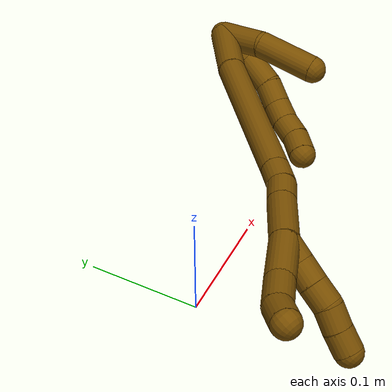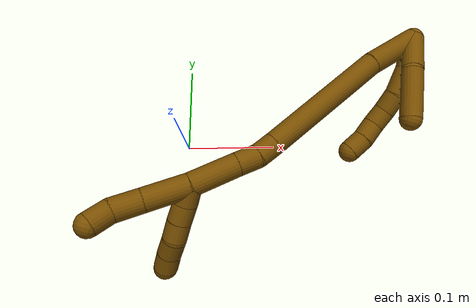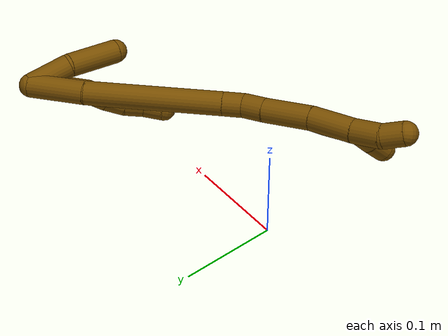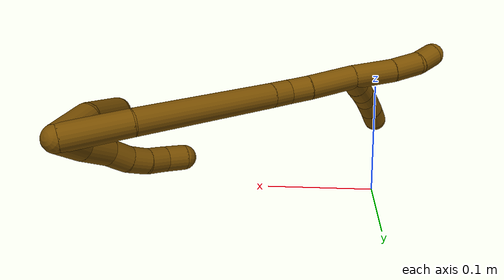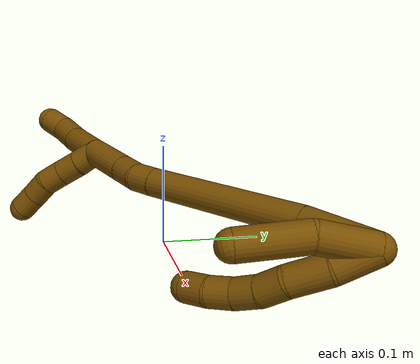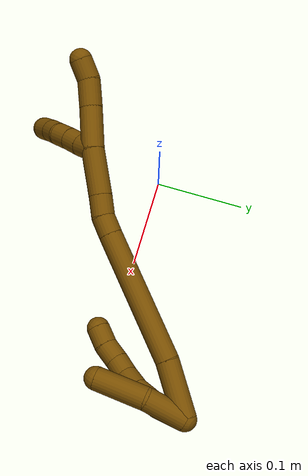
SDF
<sdf version="1.7">
 <world name="default">
  <model name="12">
   <static>0</static>
   <link name="12">
    <collision name="collision-cylinder-e_1_2_8">
     <pose>0.002296 0.001969 0.016513 -0.118653 0.137172 -0.00816</pose>
     <geometry><cylinder><radius>0.0125</radius><length>0.033576</length></cylinder></geometry>
     <surface>
      <friction><ode><mu>1.16</mu><mu2>1.16</mu2><slip1>0</slip1><slip2>0</slip2></ode></friction>
      <contact><ode><kp>1e+06</kp><kd>1</kd><max_vel>0</max_vel><min_depth>0.001</min_depth></ode></contact>
     </surface>
    </collision>
    <visual name="visual-cylinder-e_1_2_8">
     <pose>0.002296 0.001969 0.016513 -0.118653 0.137172 -0.00816</pose>
     <geometry><cylinder><radius>0.0125</radius><length>0.033576</length></cylinder></geometry>
     <material><ambient>0.466667 0.301961 0 1</ambient></material>
    </visual>
    <collision name="collision-cylinder-e_2_8_9">
     <pose>0.005509 0.002588 0.04879 0.085381 0.057939 0.002476</pose>
     <geometry><cylinder><radius>0.0125</radius><length>0.031695</length></cylinder></geometry>
     <surface>
      <friction><ode><mu>1.16</mu><mu2>1.16</mu2><slip1>0</slip1><slip2>0</slip2></ode></friction>
      <contact><ode><kp>1e+06</kp><kd>1</kd><max_vel>0</max_vel><min_depth>0.001</min_depth></ode></contact>
     </surface>
    </collision>
    <visual name="visual-cylinder-e_2_8_9">
     <pose>0.005509 0.002588 0.04879 0.085381 0.057939 0.002476</pose>
     <geometry><cylinder><radius>0.0125</radius><length>0.031695</length></cylinder></geometry>
     <material><ambient>0.466667 0.301961 0 1</ambient></material>
    </visual>
    <collision name="collision-cylinder-e_3_9_10">
     <pose>0.008583 -0.001901 0.074953 0.293266 0.195954 0.029032</pose>
     <geometry><cylinder><radius>0.0125</radius><length>0.022151</length></cylinder></geometry>
     <surface>
      <friction><ode><mu>1.16</mu><mu2>1.16</mu2><slip1>0</slip1><slip2>0</slip2></ode></friction>
      <contact><ode><kp>1e+06</kp><kd>1</kd><max_vel>0</max_vel><min_depth>0.001</min_depth></ode></contact>
     </surface>
    </collision>
    <visual name="visual-cylinder-e_3_9_10">
     <pose>0.008583 -0.001901 0.074953 0.293266 0.195954 0.029032</pose>
     <geometry><cylinder><radius>0.0125</radius><length>0.022151</length></cylinder></geometry>
     <material><ambient>0.466667 0.301961 0 1</ambient></material>
    </visual>
    <collision name="collision-cylinder-e_4_10_11">
     <pose>0.010586 -0.008693 0.09493 0.364173 -0.014917 -0.002747</pose>
     <geometry><cylinder><radius>0.0125</radius><length>0.020502</length></cylinder></geometry>
     <surface>
      <friction><ode><mu>1.16</mu><mu2>1.16</mu2><slip1>0</slip1><slip2>0</slip2></ode></friction>
      <contact><ode><kp>1e+06</kp><kd>1</kd><max_vel>0</max_vel><min_depth>0.001</min_depth></ode></contact>
     </surface>
    </collision>
    <visual name="visual-cylinder-e_4_10_11">
     <pose>0.010586 -0.008693 0.09493 0.364173 -0.014917 -0.002747</pose>
     <geometry><cylinder><radius>0.0125</radius><length>0.020502</length></cylinder></geometry>
     <material><ambient>0.466667 0.301961 0 1</ambient></material>
    </visual>
    <collision name="collision-cylinder-e_5_11_12">
     <pose>0.008287 -0.015387 0.1142 0.304307 -0.208211 -0.03204</pose>
     <geometry><cylinder><radius>0.0125</radius><length>0.020765</length></cylinder></geometry>
     <surface>
      <friction><ode><mu>1.16</mu><mu2>1.16</mu2><slip1>0</slip1><slip2>0</slip2></ode></friction>
      <contact><ode><kp>1e+06</kp><kd>1</kd><max_vel>0</max_vel><min_depth>0.001</min_depth></ode></contact>
     </surface>
    </collision>
    <visual name="visual-cylinder-e_5_11_12">
     <pose>0.008287 -0.015387 0.1142 0.304307 -0.208211 -0.03204</pose>
     <geometry><cylinder><radius>0.0125</radius><length>0.020765</length></cylinder></geometry>
     <material><ambient>0.466667 0.301961 0 1</ambient></material>
    </visual>
    <collision name="collision-cylinder-e_6_12_6">
     <pose>0.003811 -0.023677 0.132869 0.528802 -0.220444 -0.059908</pose>
     <geometry><cylinder><radius>0.0125</radius><length>0.021311</length></cylinder></geometry>
     <surface>
      <friction><ode><mu>1.16</mu><mu2>1.16</mu2><slip1>0</slip1><slip2>0</slip2></ode></friction>
      <contact><ode><kp>1e+06</kp><kd>1</kd><max_vel>0</max_vel><min_depth>0.001</min_depth></ode></contact>
     </surface>
    </collision>
    <visual name="visual-cylinder-e_6_12_6">
     <pose>0.003811 -0.023677 0.132869 0.528802 -0.220444 -0.059908</pose>
     <geometry><cylinder><radius>0.0125</radius><length>0.021311</length></cylinder></geometry>
     <material><ambient>0.466667 0.301961 0 1</ambient></material>
    </visual>
    <collision name="collision-cylinder-e_1_2_13">
     <pose>-0.010939 0.004058 0.019049 -0.209878 -0.511755 0.055095</pose>
     <geometry><cylinder><radius>0.0125</radius><length>0.044677</length></cylinder></geometry>
     <surface>
      <friction><ode><mu>1.16</mu><mu2>1.16</mu2><slip1>0</slip1><slip2>0</slip2></ode></friction>
      <contact><ode><kp>1e+06</kp><kd>1</kd><max_vel>0</max_vel><min_depth>0.001</min_depth></ode></contact>
     </surface>
    </collision>
    <visual name="visual-cylinder-e_1_2_13">
     <pose>-0.010939 0.004058 0.019049 -0.209878 -0.511755 0.055095</pose>
     <geometry><cylinder><radius>0.0125</radius><length>0.044677</length></cylinder></geometry>
     <material><ambient>0.466667 0.301961 0 1</ambient></material>
    </visual>
    <collision name="collision-cylinder-e_2_13_5">
     <pose>-0.027653 0.014678 0.064343 -0.245041 -0.210295 0.02599</pose>
     <geometry><cylinder><radius>0.0125</radius><length>0.055323</length></cylinder></geometry>
     <surface>
      <friction><ode><mu>1.16</mu><mu2>1.16</mu2><slip1>0</slip1><slip2>0</slip2></ode></friction>
      <contact><ode><kp>1e+06</kp><kd>1</kd><max_vel>0</max_vel><min_depth>0.001</min_depth></ode></contact>
     </surface>
    </collision>
    <visual name="visual-cylinder-e_2_13_5">
     <pose>-0.027653 0.014678 0.064343 -0.245041 -0.210295 0.02599</pose>
     <geometry><cylinder><radius>0.0125</radius><length>0.055323</length></cylinder></geometry>
     <material><ambient>0.466667 0.301961 0 1</ambient></material>
    </visual>
    <collision name="collision-cylinder-e_1_2_14">
     <pose>-0.011283 -0.017964 0.021912 0.686712 -0.378977 -0.136922</pose>
     <geometry><cylinder><radius>0.0125</radius><length>0.060996</length></cylinder></geometry>
     <surface>
      <friction><ode><mu>1.16</mu><mu2>1.16</mu2><slip1>0</slip1><slip2>0</slip2></ode></friction>
      <contact><ode><kp>1e+06</kp><kd>1</kd><max_vel>0</max_vel><min_depth>0.001</min_depth></ode></contact>
     </surface>
    </collision>
    <visual name="visual-cylinder-e_1_2_14">
     <pose>-0.011283 -0.017964 0.021912 0.686712 -0.378977 -0.136922</pose>
     <geometry><cylinder><radius>0.0125</radius><length>0.060996</length></cylinder></geometry>
     <material><ambient>0.466667 0.301961 0 1</ambient></material>
    </visual>
    <collision name="collision-cylinder-e_2_14_15">
     <pose>-0.047694 -0.070627 0.101562 0.541135 -0.357031 -0.100011</pose>
     <geometry><cylinder><radius>0.0125</radius><length>0.143794</length></cylinder></geometry>
     <surface>
      <friction><ode><mu>1.16</mu><mu2>1.16</mu2><slip1>0</slip1><slip2>0</slip2></ode></friction>
      <contact><ode><kp>1e+06</kp><kd>1</kd><max_vel>0</max_vel><min_depth>0.001</min_depth></ode></contact>
     </surface>
    </collision>
    <visual name="visual-cylinder-e_2_14_15">
     <pose>-0.047694 -0.070627 0.101562 0.541135 -0.357031 -0.100011</pose>
     <geometry><cylinder><radius>0.0125</radius><length>0.143794</length></cylinder></geometry>
     <material><ambient>0.466667 0.301961 0 1</ambient></material>
    </visual>
    <collision name="collision-cylinder-e_3_15_16">
     <pose>-0.076679 -0.110695 0.167613 0.573447 -0.371639 -0.110743</pose>
     <geometry><cylinder><radius>0.0125</radius><length>0.021243</length></cylinder></geometry>
     <surface>
      <friction><ode><mu>1.16</mu><mu2>1.16</mu2><slip1>0</slip1><slip2>0</slip2></ode></friction>
      <contact><ode><kp>1e+06</kp><kd>1</kd><max_vel>0</max_vel><min_depth>0.001</min_depth></ode></contact>
     </surface>
    </collision>
    <visual name="visual-cylinder-e_3_15_16">
     <pose>-0.076679 -0.110695 0.167613 0.573447 -0.371639 -0.110743</pose>
     <geometry><cylinder><radius>0.0125</radius><length>0.021243</length></cylinder></geometry>
     <material><ambient>0.466667 0.301961 0 1</ambient></material>
    </visual>
    <collision name="collision-cylinder-e_4_16_17">
     <pose>-0.084842 -0.124225 0.183003 0.85646 -0.379363 -0.174832</pose>
     <geometry><cylinder><radius>0.0125</radius><length>0.023257</length></cylinder></geometry>
     <surface>
      <friction><ode><mu>1.16</mu><mu2>1.16</mu2><slip1>0</slip1><slip2>0</slip2></ode></friction>
      <contact><ode><kp>1e+06</kp><kd>1</kd><max_vel>0</max_vel><min_depth>0.001</min_depth></ode></contact>
     </surface>
    </collision>
    <visual name="visual-cylinder-e_4_16_17">
     <pose>-0.084842 -0.124225 0.183003 0.85646 -0.379363 -0.174832</pose>
     <geometry><cylinder><radius>0.0125</radius><length>0.023257</length></cylinder></geometry>
     <material><ambient>0.466667 0.301961 0 1</ambient></material>
    </visual>
    <collision name="collision-cylinder-e_5_17_1">
     <pose>-0.099421 -0.149429 0.205793 0.825952 -0.417128 -0.184943</pose>
     <geometry><cylinder><radius>0.0125</radius><length>0.050711</length></cylinder></geometry>
     <surface>
      <friction><ode><mu>1.16</mu><mu2>1.16</mu2><slip1>0</slip1><slip2>0</slip2></ode></friction>
      <contact><ode><kp>1e+06</kp><kd>1</kd><max_vel>0</max_vel><min_depth>0.001</min_depth></ode></contact>
     </surface>
    </collision>
    <visual name="visual-cylinder-e_5_17_1">
     <pose>-0.099421 -0.149429 0.205793 0.825952 -0.417128 -0.184943</pose>
     <geometry><cylinder><radius>0.0125</radius><length>0.050711</length></cylinder></geometry>
     <material><ambient>0.466667 0.301961 0 1</ambient></material>
    </visual>
    <collision name="collision-cylinder-e_1_1_18">
     <pose>-0.117479 -0.183926 0.234397 0.934664 -0.344501 -0.175131</pose>
     <geometry><cylinder><radius>0.0125</radius><length>0.046106</length></cylinder></geometry>
     <surface>
      <friction><ode><mu>1.16</mu><mu2>1.16</mu2><slip1>0</slip1><slip2>0</slip2></ode></friction>
      <contact><ode><kp>1e+06</kp><kd>1</kd><max_vel>0</max_vel><min_depth>0.001</min_depth></ode></contact>
     </surface>
    </collision>
    <visual name="visual-cylinder-e_1_1_18">
     <pose>-0.117479 -0.183926 0.234397 0.934664 -0.344501 -0.175131</pose>
     <geometry><cylinder><radius>0.0125</radius><length>0.046106</length></cylinder></geometry>
     <material><ambient>0.466667 0.301961 0 1</ambient></material>
    </visual>
    <collision name="collision-cylinder-e_2_18_19">
     <pose>-0.131971 -0.212486 0.255463 0.936306 -0.452609 -0.231804</pose>
     <geometry><cylinder><radius>0.0125</radius><length>0.03067</length></cylinder></geometry>
     <surface>
      <friction><ode><mu>1.16</mu><mu2>1.16</mu2><slip1>0</slip1><slip2>0</slip2></ode></friction>
      <contact><ode><kp>1e+06</kp><kd>1</kd><max_vel>0</max_vel><min_depth>0.001</min_depth></ode></contact>
     </surface>
    </collision>
    <visual name="visual-cylinder-e_2_18_19">
     <pose>-0.131971 -0.212486 0.255463 0.936306 -0.452609 -0.231804</pose>
     <geometry><cylinder><radius>0.0125</radius><length>0.03067</length></cylinder></geometry>
     <material><ambient>0.466667 0.301961 0 1</ambient></material>
    </visual>
    <collision name="collision-cylinder-e_3_19_4">
     <pose>-0.145501 -0.228961 0.271348 0.608151 -0.628207 -0.203184</pose>
     <geometry><cylinder><radius>0.0125</radius><length>0.023225</length></cylinder></geometry>
     <surface>
      <friction><ode><mu>1.16</mu><mu2>1.16</mu2><slip1>0</slip1><slip2>0</slip2></ode></friction>
      <contact><ode><kp>1e+06</kp><kd>1</kd><max_vel>0</max_vel><min_depth>0.001</min_depth></ode></contact>
     </surface>
    </collision>
    <visual name="visual-cylinder-e_3_19_4">
     <pose>-0.145501 -0.228961 0.271348 0.608151 -0.628207 -0.203184</pose>
     <geometry><cylinder><radius>0.0125</radius><length>0.023225</length></cylinder></geometry>
     <material><ambient>0.466667 0.301961 0 1</ambient></material>
    </visual>
    <collision name="collision-cylinder-e_1_1_20">
     <pose>-0.10683 -0.166719 0.231085 0.02582 0.290356 0.003775</pose>
     <geometry><cylinder><radius>0.0125</radius><length>0.02</length></cylinder></geometry>
     <surface>
      <friction><ode><mu>1.16</mu><mu2>1.16</mu2><slip1>0</slip1><slip2>0</slip2></ode></friction>
      <contact><ode><kp>1e+06</kp><kd>1</kd><max_vel>0</max_vel><min_depth>0.001</min_depth></ode></contact>
     </surface>
    </collision>
    <visual name="visual-cylinder-e_1_1_20">
     <pose>-0.10683 -0.166719 0.231085 0.02582 0.290356 0.003775</pose>
     <geometry><cylinder><radius>0.0125</radius><length>0.02</length></cylinder></geometry>
     <material><ambient>0.466667 0.301961 0 1</ambient></material>
    </visual>
    <collision name="collision-cylinder-e_2_20_21">
     <pose>-0.101927 -0.167692 0.250426 0.07426 0.205472 0.00766</pose>
     <geometry><cylinder><radius>0.0125</radius><length>0.02</length></cylinder></geometry>
     <surface>
      <friction><ode><mu>1.16</mu><mu2>1.16</mu2><slip1>0</slip1><slip2>0</slip2></ode></friction>
      <contact><ode><kp>1e+06</kp><kd>1</kd><max_vel>0</max_vel><min_depth>0.001</min_depth></ode></contact>
     </surface>
    </collision>
    <visual name="visual-cylinder-e_2_20_21">
     <pose>-0.101927 -0.167692 0.250426 0.07426 0.205472 0.00766</pose>
     <geometry><cylinder><radius>0.0125</radius><length>0.02</length></cylinder></geometry>
     <material><ambient>0.466667 0.301961 0 1</ambient></material>
    </visual>
    <collision name="collision-cylinder-e_3_21_22">
     <pose>-0.097664 -0.168682 0.269934 0.027003 0.224207 0.00304</pose>
     <geometry><cylinder><radius>0.0125</radius><length>0.02</length></cylinder></geometry>
     <surface>
      <friction><ode><mu>1.16</mu><mu2>1.16</mu2><slip1>0</slip1><slip2>0</slip2></ode></friction>
      <contact><ode><kp>1e+06</kp><kd>1</kd><max_vel>0</max_vel><min_depth>0.001</min_depth></ode></contact>
     </surface>
    </collision>
    <visual name="visual-cylinder-e_3_21_22">
     <pose>-0.097664 -0.168682 0.269934 0.027003 0.224207 0.00304</pose>
     <geometry><cylinder><radius>0.0125</radius><length>0.02</length></cylinder></geometry>
     <material><ambient>0.466667 0.301961 0 1</ambient></material>
    </visual>
    <collision name="collision-cylinder-e_4_22_23">
     <pose>-0.09084 -0.170417 0.288437 0.166513 0.477998 0.04066</pose>
     <geometry><cylinder><radius>0.0125</radius><length>0.02</length></cylinder></geometry>
     <surface>
      <friction><ode><mu>1.16</mu><mu2>1.16</mu2><slip1>0</slip1><slip2>0</slip2></ode></friction>
      <contact><ode><kp>1e+06</kp><kd>1</kd><max_vel>0</max_vel><min_depth>0.001</min_depth></ode></contact>
     </surface>
    </collision>
    <visual name="visual-cylinder-e_4_22_23">
     <pose>-0.09084 -0.170417 0.288437 0.166513 0.477998 0.04066</pose>
     <geometry><cylinder><radius>0.0125</radius><length>0.02</length></cylinder></geometry>
     <material><ambient>0.466667 0.301961 0 1</ambient></material>
    </visual>
    <collision name="collision-cylinder-e_5_23_3">
     <pose>-0.081781 -0.17263 0.306113 0.082878 0.46219 0.019512</pose>
     <geometry><cylinder><radius>0.0125</radius><length>0.02</length></cylinder></geometry>
     <surface>
      <friction><ode><mu>1.16</mu><mu2>1.16</mu2><slip1>0</slip1><slip2>0</slip2></ode></friction>
      <contact><ode><kp>1e+06</kp><kd>1</kd><max_vel>0</max_vel><min_depth>0.001</min_depth></ode></contact>
     </surface>
    </collision>
    <visual name="visual-cylinder-e_5_23_3">
     <pose>-0.081781 -0.17263 0.306113 0.082878 0.46219 0.019512</pose>
     <geometry><cylinder><radius>0.0125</radius><length>0.02</length></cylinder></geometry>
     <material><ambient>0.466667 0.301961 0 1</ambient></material>
    </visual>
    <collision name="collision-sphere-3">
     <pose>-0.077322 -0.17337 0.315033 0 -0 0</pose>
     <geometry><sphere><radius>0.0125</radius></sphere></geometry>
     <surface>
      <friction><ode><mu>1.16</mu><mu2>1.16</mu2><slip1>0</slip1><slip2>0</slip2></ode></friction>
      <contact><ode><kp>1e+06</kp><kd>1</kd><max_vel>0</max_vel><min_depth>0.001</min_depth></ode></contact>
     </surface>
    </collision>
    <visual name="visual-sphere-3">
     <pose>-0.077322 -0.17337 0.315033 0 -0 0</pose>
     <geometry><sphere><radius>0.0125</radius></sphere></geometry>
     <material><ambient>0.466667 0.301961 0 1</ambient></material>
    </visual>
    <collision name="collision-sphere-23">
     <pose>-0.08624 -0.171889 0.297193 0 -0 0</pose>
     <geometry><sphere><radius>0.0125</radius></sphere></geometry>
     <surface>
      <friction><ode><mu>1.16</mu><mu2>1.16</mu2><slip1>0</slip1><slip2>0</slip2></ode></friction>
      <contact><ode><kp>1e+06</kp><kd>1</kd><max_vel>0</max_vel><min_depth>0.001</min_depth></ode></contact>
     </surface>
    </collision>
    <visual name="visual-sphere-23">
     <pose>-0.08624 -0.171889 0.297193 0 -0 0</pose>
     <geometry><sphere><radius>0.0125</radius></sphere></geometry>
     <material><ambient>0.466667 0.301961 0 1</ambient></material>
    </visual>
    <collision name="collision-sphere-22">
     <pose>-0.09544 -0.168945 0.279681 0 -0 0</pose>
     <geometry><sphere><radius>0.0125</radius></sphere></geometry>
     <surface>
      <friction><ode><mu>1.16</mu><mu2>1.16</mu2><slip1>0</slip1><slip2>0</slip2></ode></friction>
      <contact><ode><kp>1e+06</kp><kd>1</kd><max_vel>0</max_vel><min_depth>0.001</min_depth></ode></contact>
     </surface>
    </collision>
    <visual name="visual-sphere-22">
     <pose>-0.09544 -0.168945 0.279681 0 -0 0</pose>
     <geometry><sphere><radius>0.0125</radius></sphere></geometry>
     <material><ambient>0.466667 0.301961 0 1</ambient></material>
    </visual>
    <collision name="collision-sphere-21">
     <pose>-0.099887 -0.168419 0.260188 0 -0 0</pose>
     <geometry><sphere><radius>0.0125</radius></sphere></geometry>
     <surface>
      <friction><ode><mu>1.16</mu><mu2>1.16</mu2><slip1>0</slip1><slip2>0</slip2></ode></friction>
      <contact><ode><kp>1e+06</kp><kd>1</kd><max_vel>0</max_vel><min_depth>0.001</min_depth></ode></contact>
     </surface>
    </collision>
    <visual name="visual-sphere-21">
     <pose>-0.099887 -0.168419 0.260188 0 -0 0</pose>
     <geometry><sphere><radius>0.0125</radius></sphere></geometry>
     <material><ambient>0.466667 0.301961 0 1</ambient></material>
    </visual>
    <collision name="collision-sphere-20">
     <pose>-0.103967 -0.166966 0.240663 0 -0 0</pose>
     <geometry><sphere><radius>0.0125</radius></sphere></geometry>
     <surface>
      <friction><ode><mu>1.16</mu><mu2>1.16</mu2><slip1>0</slip1><slip2>0</slip2></ode></friction>
      <contact><ode><kp>1e+06</kp><kd>1</kd><max_vel>0</max_vel><min_depth>0.001</min_depth></ode></contact>
     </surface>
    </collision>
    <visual name="visual-sphere-20">
     <pose>-0.103967 -0.166966 0.240663 0 -0 0</pose>
     <geometry><sphere><radius>0.0125</radius></sphere></geometry>
     <material><ambient>0.466667 0.301961 0 1</ambient></material>
    </visual>
    <collision name="collision-sphere-4">
     <pose>-0.152326 -0.234329 0.279059 0 -0 0</pose>
     <geometry><sphere><radius>0.0125</radius></sphere></geometry>
     <surface>
      <friction><ode><mu>1.16</mu><mu2>1.16</mu2><slip1>0</slip1><slip2>0</slip2></ode></friction>
      <contact><ode><kp>1e+06</kp><kd>1</kd><max_vel>0</max_vel><min_depth>0.001</min_depth></ode></contact>
     </surface>
    </collision>
    <visual name="visual-sphere-4">
     <pose>-0.152326 -0.234329 0.279059 0 -0 0</pose>
     <geometry><sphere><radius>0.0125</radius></sphere></geometry>
     <material><ambient>0.466667 0.301961 0 1</ambient></material>
    </visual>
    <collision name="collision-sphere-12">
     <pose>0.006141 -0.018431 0.123892 0 -0 0</pose>
     <geometry><sphere><radius>0.0125</radius></sphere></geometry>
     <surface>
      <friction><ode><mu>1.16</mu><mu2>1.16</mu2><slip1>0</slip1><slip2>0</slip2></ode></friction>
      <contact><ode><kp>1e+06</kp><kd>1</kd><max_vel>0</max_vel><min_depth>0.001</min_depth></ode></contact>
     </surface>
    </collision>
    <visual name="visual-sphere-12">
     <pose>0.006141 -0.018431 0.123892 0 -0 0</pose>
     <geometry><sphere><radius>0.0125</radius></sphere></geometry>
     <material><ambient>0.466667 0.301961 0 1</ambient></material>
    </visual>
    <collision name="collision-sphere-11">
     <pose>0.010434 -0.012343 0.104508 0 -0 0</pose>
     <geometry><sphere><radius>0.0125</radius></sphere></geometry>
     <surface>
      <friction><ode><mu>1.16</mu><mu2>1.16</mu2><slip1>0</slip1><slip2>0</slip2></ode></friction>
      <contact><ode><kp>1e+06</kp><kd>1</kd><max_vel>0</max_vel><min_depth>0.001</min_depth></ode></contact>
     </surface>
    </collision>
    <visual name="visual-sphere-11">
     <pose>0.010434 -0.012343 0.104508 0 -0 0</pose>
     <geometry><sphere><radius>0.0125</radius></sphere></geometry>
     <material><ambient>0.466667 0.301961 0 1</ambient></material>
    </visual>
    <collision name="collision-sphere-10">
     <pose>0.010739 -0.005042 0.085352 0 -0 0</pose>
     <geometry><sphere><radius>0.0125</radius></sphere></geometry>
     <surface>
      <friction><ode><mu>1.16</mu><mu2>1.16</mu2><slip1>0</slip1><slip2>0</slip2></ode></friction>
      <contact><ode><kp>1e+06</kp><kd>1</kd><max_vel>0</max_vel><min_depth>0.001</min_depth></ode></contact>
     </surface>
    </collision>
    <visual name="visual-sphere-10">
     <pose>0.010739 -0.005042 0.085352 0 -0 0</pose>
     <geometry><sphere><radius>0.0125</radius></sphere></geometry>
     <material><ambient>0.466667 0.301961 0 1</ambient></material>
    </visual>
    <collision name="collision-sphere-9">
     <pose>0.006427 0.001239 0.064553 0 -0 0</pose>
     <geometry><sphere><radius>0.0125</radius></sphere></geometry>
     <surface>
      <friction><ode><mu>1.16</mu><mu2>1.16</mu2><slip1>0</slip1><slip2>0</slip2></ode></friction>
      <contact><ode><kp>1e+06</kp><kd>1</kd><max_vel>0</max_vel><min_depth>0.001</min_depth></ode></contact>
     </surface>
    </collision>
    <visual name="visual-sphere-9">
     <pose>0.006427 0.001239 0.064553 0 -0 0</pose>
     <geometry><sphere><radius>0.0125</radius></sphere></geometry>
     <material><ambient>0.466667 0.301961 0 1</ambient></material>
    </visual>
    <collision name="collision-sphere-2">
     <geometry><sphere><radius>0.0125</radius></sphere></geometry>
     <surface>
      <friction><ode><mu>1.16</mu><mu2>1.16</mu2><slip1>0</slip1><slip2>0</slip2></ode></friction>
      <contact><ode><kp>1e+06</kp><kd>1</kd><max_vel>0</max_vel><min_depth>0.001</min_depth></ode></contact>
     </surface>
    </collision>
    <visual name="visual-sphere-2">
     <geometry><sphere><radius>0.0125</radius></sphere></geometry>
     <material><ambient>0.466667 0.301961 0 1</ambient></material>
    </visual>
    <collision name="collision-sphere-19">
     <pose>-0.138677 -0.223593 0.263637 0 -0 0</pose>
     <geometry><sphere><radius>0.0125</radius></sphere></geometry>
     <surface>
      <friction><ode><mu>1.16</mu><mu2>1.16</mu2><slip1>0</slip1><slip2>0</slip2></ode></friction>
      <contact><ode><kp>1e+06</kp><kd>1</kd><max_vel>0</max_vel><min_depth>0.001</min_depth></ode></contact>
     </surface>
    </collision>
    <visual name="visual-sphere-19">
     <pose>-0.138677 -0.223593 0.263637 0 -0 0</pose>
     <geometry><sphere><radius>0.0125</radius></sphere></geometry>
     <material><ambient>0.466667 0.301961 0 1</ambient></material>
    </visual>
    <collision name="collision-sphere-8">
     <pose>0.004591 0.003937 0.033027 0 -0 0</pose>
     <geometry><sphere><radius>0.0125</radius></sphere></geometry>
     <surface>
      <friction><ode><mu>1.16</mu><mu2>1.16</mu2><slip1>0</slip1><slip2>0</slip2></ode></friction>
      <contact><ode><kp>1e+06</kp><kd>1</kd><max_vel>0</max_vel><min_depth>0.001</min_depth></ode></contact>
     </surface>
    </collision>
    <visual name="visual-sphere-8">
     <pose>0.004591 0.003937 0.033027 0 -0 0</pose>
     <geometry><sphere><radius>0.0125</radius></sphere></geometry>
     <material><ambient>0.466667 0.301961 0 1</ambient></material>
    </visual>
    <collision name="collision-sphere-6">
     <pose>0.001481 -0.028922 0.141846 0 -0 0</pose>
     <geometry><sphere><radius>0.0125</radius></sphere></geometry>
     <surface>
      <friction><ode><mu>1.16</mu><mu2>1.16</mu2><slip1>0</slip1><slip2>0</slip2></ode></friction>
      <contact><ode><kp>1e+06</kp><kd>1</kd><max_vel>0</max_vel><min_depth>0.001</min_depth></ode></contact>
     </surface>
    </collision>
    <visual name="visual-sphere-6">
     <pose>0.001481 -0.028922 0.141846 0 -0 0</pose>
     <geometry><sphere><radius>0.0125</radius></sphere></geometry>
     <material><ambient>0.466667 0.301961 0 1</ambient></material>
    </visual>
    <collision name="collision-sphere-13">
     <pose>-0.021879 0.008116 0.038099 0 -0 0</pose>
     <geometry><sphere><radius>0.0125</radius></sphere></geometry>
     <surface>
      <friction><ode><mu>1.16</mu><mu2>1.16</mu2><slip1>0</slip1><slip2>0</slip2></ode></friction>
      <contact><ode><kp>1e+06</kp><kd>1</kd><max_vel>0</max_vel><min_depth>0.001</min_depth></ode></contact>
     </surface>
    </collision>
    <visual name="visual-sphere-13">
     <pose>-0.021879 0.008116 0.038099 0 -0 0</pose>
     <geometry><sphere><radius>0.0125</radius></sphere></geometry>
     <material><ambient>0.466667 0.301961 0 1</ambient></material>
    </visual>
    <collision name="collision-sphere-5">
     <pose>-0.033427 0.021241 0.090586 0 -0 0</pose>
     <geometry><sphere><radius>0.0125</radius></sphere></geometry>
     <surface>
      <friction><ode><mu>1.16</mu><mu2>1.16</mu2><slip1>0</slip1><slip2>0</slip2></ode></friction>
      <contact><ode><kp>1e+06</kp><kd>1</kd><max_vel>0</max_vel><min_depth>0.001</min_depth></ode></contact>
     </surface>
    </collision>
    <visual name="visual-sphere-5">
     <pose>-0.033427 0.021241 0.090586 0 -0 0</pose>
     <geometry><sphere><radius>0.0125</radius></sphere></geometry>
     <material><ambient>0.466667 0.301961 0 1</ambient></material>
    </visual>
    <collision name="collision-sphere-14">
     <pose>-0.022567 -0.035927 0.043823 0 -0 0</pose>
     <geometry><sphere><radius>0.0125</radius></sphere></geometry>
     <surface>
      <friction><ode><mu>1.16</mu><mu2>1.16</mu2><slip1>0</slip1><slip2>0</slip2></ode></friction>
      <contact><ode><kp>1e+06</kp><kd>1</kd><max_vel>0</max_vel><min_depth>0.001</min_depth></ode></contact>
     </surface>
    </collision>
    <visual name="visual-sphere-14">
     <pose>-0.022567 -0.035927 0.043823 0 -0 0</pose>
     <geometry><sphere><radius>0.0125</radius></sphere></geometry>
     <material><ambient>0.466667 0.301961 0 1</ambient></material>
    </visual>
    <collision name="collision-sphere-15">
     <pose>-0.072822 -0.105326 0.1593 0 -0 0</pose>
     <geometry><sphere><radius>0.0125</radius></sphere></geometry>
     <surface>
      <friction><ode><mu>1.16</mu><mu2>1.16</mu2><slip1>0</slip1><slip2>0</slip2></ode></friction>
      <contact><ode><kp>1e+06</kp><kd>1</kd><max_vel>0</max_vel><min_depth>0.001</min_depth></ode></contact>
     </surface>
    </collision>
    <visual name="visual-sphere-15">
     <pose>-0.072822 -0.105326 0.1593 0 -0 0</pose>
     <geometry><sphere><radius>0.0125</radius></sphere></geometry>
     <material><ambient>0.466667 0.301961 0 1</ambient></material>
    </visual>
    <collision name="collision-sphere-16">
     <pose>-0.080536 -0.116064 0.175927 0 -0 0</pose>
     <geometry><sphere><radius>0.0125</radius></sphere></geometry>
     <surface>
      <friction><ode><mu>1.16</mu><mu2>1.16</mu2><slip1>0</slip1><slip2>0</slip2></ode></friction>
      <contact><ode><kp>1e+06</kp><kd>1</kd><max_vel>0</max_vel><min_depth>0.001</min_depth></ode></contact>
     </surface>
    </collision>
    <visual name="visual-sphere-16">
     <pose>-0.080536 -0.116064 0.175927 0 -0 0</pose>
     <geometry><sphere><radius>0.0125</radius></sphere></geometry>
     <material><ambient>0.466667 0.301961 0 1</ambient></material>
    </visual>
    <collision name="collision-sphere-17">
     <pose>-0.089149 -0.132386 0.190079 0 -0 0</pose>
     <geometry><sphere><radius>0.0125</radius></sphere></geometry>
     <surface>
      <friction><ode><mu>1.16</mu><mu2>1.16</mu2><slip1>0</slip1><slip2>0</slip2></ode></friction>
      <contact><ode><kp>1e+06</kp><kd>1</kd><max_vel>0</max_vel><min_depth>0.001</min_depth></ode></contact>
     </surface>
    </collision>
    <visual name="visual-sphere-17">
     <pose>-0.089149 -0.132386 0.190079 0 -0 0</pose>
     <geometry><sphere><radius>0.0125</radius></sphere></geometry>
     <material><ambient>0.466667 0.301961 0 1</ambient></material>
    </visual>
    <collision name="collision-sphere-1">
     <pose>-0.109693 -0.166471 0.221506 0 -0 0</pose>
     <geometry><sphere><radius>0.0125</radius></sphere></geometry>
     <surface>
      <friction><ode><mu>1.16</mu><mu2>1.16</mu2><slip1>0</slip1><slip2>0</slip2></ode></friction>
      <contact><ode><kp>1e+06</kp><kd>1</kd><max_vel>0</max_vel><min_depth>0.001</min_depth></ode></contact>
     </surface>
    </collision>
    <visual name="visual-sphere-1">
     <pose>-0.109693 -0.166471 0.221506 0 -0 0</pose>
     <geometry><sphere><radius>0.0125</radius></sphere></geometry>
     <material><ambient>0.466667 0.301961 0 1</ambient></material>
    </visual>
    <collision name="collision-sphere-18">
     <pose>-0.125265 -0.20138 0.247288 0 -0 0</pose>
     <geometry><sphere><radius>0.0125</radius></sphere></geometry>
     <surface>
      <friction><ode><mu>1.16</mu><mu2>1.16</mu2><slip1>0</slip1><slip2>0</slip2></ode></friction>
      <contact><ode><kp>1e+06</kp><kd>1</kd><max_vel>0</max_vel><min_depth>0.001</min_depth></ode></contact>
     </surface>
    </collision>
    <visual name="visual-sphere-18">
     <pose>-0.125265 -0.20138 0.247288 0 -0 0</pose>
     <geometry><sphere><radius>0.0125</radius></sphere></geometry>
     <material><ambient>0.466667 0.301961 0 1</ambient></material>
    </visual>
    <inertial>
     <pose>-0.052961 -0.081613 0.13517 0 -0 0</pose>
     <mass>0.75</mass>
     <inertia>
      <ixx>0.000287</ixx>
      <ixy>0</ixy>
      <ixz>0</ixz>
      <iyy>0.000256</iyy>
      <iyz>0</iyz>
      <izz>0.000315</izz>
     </inertia>
    </inertial>
   </link>
   <pose>0.259465 0.10284 0.070672 3.04503 1.24658 1.12652</pose>
  </model>
 </world>
</sdf>
